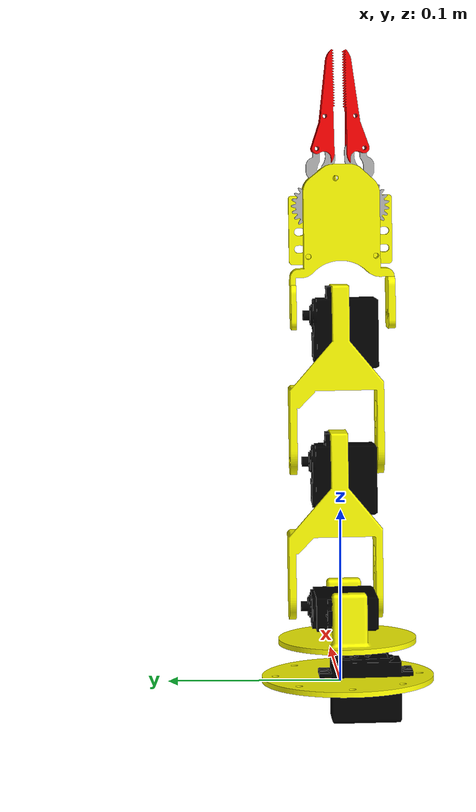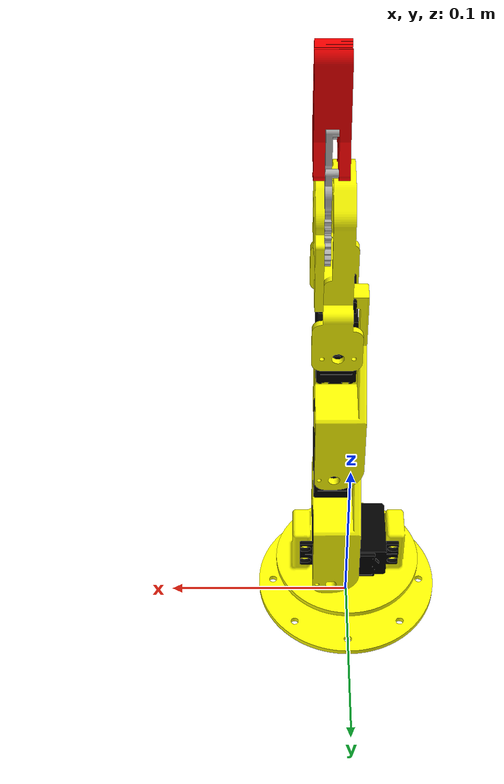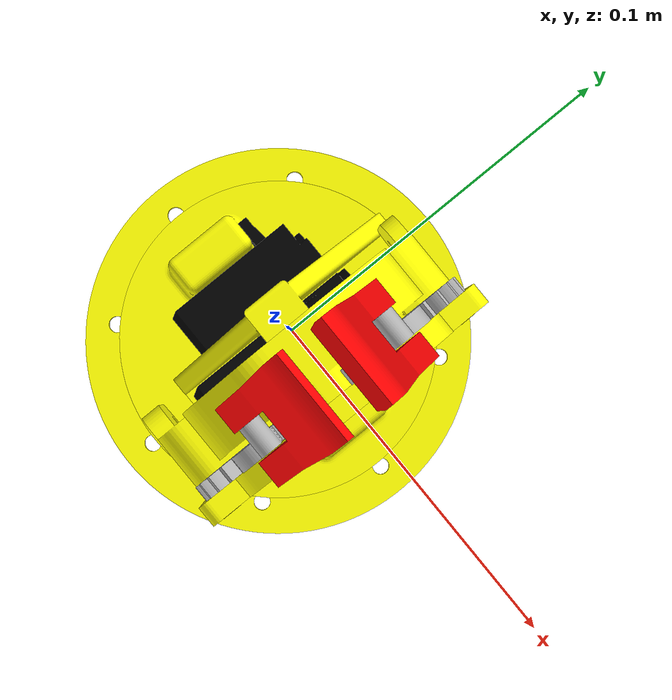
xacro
<?xml version="1.0" ?>
<robot name="manipulator" xmlns:xacro="http://www.ros.org/wiki/xacro">

<xacro:include filename="$(find manipulator_description)/urdf/materials.xacro" />
<xacro:include filename="$(find manipulator_description)/urdf/manipulator.trans" />
<xacro:include filename="$(find manipulator_description)/urdf/manipulator.gazebo" />
<link name="dummy">
</link>
<link name="base_link">
  <inertial>
    <origin rpy="0 0 0" xyz="-4.6483972681813947e-07 -0.0028785742867781672 0.0017214669795832275"/>
    <mass value="0.16048002164494451"/>
    <inertia ixx="0.000107" ixy="-0.0" ixz="0.0" iyy="0.000113" iyz="2e-06" izz="0.000219"/>
  </inertial>
  <visual>
    <origin rpy="0 0 0" xyz="0 0 0"/>
    <geometry>
      <mesh filename="package://manipulator_description/meshes/base_link.stl" scale="0.001 0.001 0.001"/>
    </geometry>
    <material name="yellow"/>
  </visual>
  <collision>
    <origin rpy="0 0 0" xyz="0 0 0"/>
    <geometry>
      <mesh filename="package://manipulator_description/meshes/base_link.stl" scale="0.001 0.001 0.001"/>
    </geometry>
  </collision>
</link>

<link name="S3003_v5_1">
  <inertial>
    <origin rpy="0 0 0" xyz="0.005025153953307029 -0.02455118048560477 -0.007694912196112059"/>
    <mass value="0.23401442553734322"/>
    <inertia ixx="6e-05" ixy="0.0" ixz="-0.0" iyy="3.5e-05" iyz="-1e-06" izz="4e-05"/>
  </inertial>
  <visual>
    <origin rpy="0 0 0" xyz="0.005025 -0.009822 -0.003022"/>
    <geometry>
      <mesh filename="package://manipulator_description/meshes/S3003_v5_1.stl" scale="0.001 0.001 0.001"/>
    </geometry>
    <material name="black"/>
  </visual>
  <collision>
    <origin rpy="0 0 0" xyz="0.005025 -0.009822 -0.003022"/>
    <geometry>
      <mesh filename="package://manipulator_description/meshes/S3003_v5_1.stl" scale="0.001 0.001 0.001"/>
    </geometry>
  </collision>
</link>

<link name="bottom_linkz_v4_1">
  <inertial>
    <origin rpy="0 0 0" xyz="1.8717896267049896e-05 0.00019172714869587684 0.010978273812522824"/>
    <mass value="0.19906890879785208"/>
    <inertia ixx="6.9e-05" ixy="0.0" ixz="-0.0" iyy="0.000123" iyz="0.0" izz="0.000154"/>
  </inertial>
  <visual>
    <origin rpy="0 0 0" xyz="-0.0 0.004022 -0.019432"/>
    <geometry>
      <mesh filename="package://manipulator_description/meshes/bottom_linkz_v4_1.stl" scale="0.001 0.001 0.001"/>
    </geometry>
    <material name="yellow"/>
  </visual>
  <collision>
    <origin rpy="0 0 0" xyz="-0.0 0.004022 -0.019432"/>
    <geometry>
      <mesh filename="package://manipulator_description/meshes/bottom_linkz_v4_1.stl" scale="0.001 0.001 0.001"/>
    </geometry>
  </collision>
</link>

<link name="S3003_v5_2">
  <inertial>
    <origin rpy="0 0 0" xyz="-0.024427603744651884 -0.007999833662449479 0.005151780138407669"/>
    <mass value="0.23401442553734322"/>
    <inertia ixx="3.5e-05" ixy="-1e-06" ixz="0.0" iyy="4e-05" iyz="0.0" izz="6e-05"/>
  </inertial>
  <visual>
    <origin rpy="0 0 0" xyz="-0.02425 -0.006257 -0.037088"/>
    <geometry>
      <mesh filename="package://manipulator_description/meshes/S3003_v5_2.stl" scale="0.001 0.001 0.001"/>
    </geometry>
    <material name="black"/>
  </visual>
  <collision>
    <origin rpy="0 0 0" xyz="-0.02425 -0.006257 -0.037088"/>
    <geometry>
      <mesh filename="package://manipulator_description/meshes/S3003_v5_2.stl" scale="0.001 0.001 0.001"/>
    </geometry>
  </collision>
</link>

<link name="link_v3_1">
  <inertial>
    <origin rpy="0 0 0" xyz="-0.004835375618104331 -0.019519639386637894 0.04074861857700073"/>
    <mass value="0.14389975561434148"/>
    <inertia ixx="0.000157" ixy="-1e-06" ixz="8e-06" iyy="0.000115" iyz="5e-06" izz="6e-05"/>
  </inertial>
  <visual>
    <origin rpy="0 0 0" xyz="-0.01015 -0.022524 -0.041858"/>
    <geometry>
      <mesh filename="package://manipulator_description/meshes/link_v3_1.stl" scale="0.001 0.001 0.001"/>
    </geometry>
    <material name="yellow"/>
  </visual>
  <collision>
    <origin rpy="0 0 0" xyz="-0.01015 -0.022524 -0.041858"/>
    <geometry>
      <mesh filename="package://manipulator_description/meshes/link_v3_1.stl" scale="0.001 0.001 0.001"/>
    </geometry>
  </collision>
</link>

<link name="S3003_v5_3">
  <inertial>
    <origin rpy="0 0 0" xyz="-0.005025153953305236 -0.008462353687474342 -0.02429777794975288"/>
    <mass value="0.23401442553734322"/>
    <inertia ixx="6e-05" ixy="0.0" ixz="-0.0" iyy="4e-05" iyz="-1e-06" izz="3.5e-05"/>
  </inertial>
  <visual>
    <origin rpy="0 0 0" xyz="-0.015334 -0.006085 -0.141379"/>
    <geometry>
      <mesh filename="package://manipulator_description/meshes/S3003_v5_3.stl" scale="0.001 0.001 0.001"/>
    </geometry>
    <material name="black"/>
  </visual>
  <collision>
    <origin rpy="0 0 0" xyz="-0.015334 -0.006085 -0.141379"/>
    <geometry>
      <mesh filename="package://manipulator_description/meshes/S3003_v5_3.stl" scale="0.001 0.001 0.001"/>
    </geometry>
  </collision>
</link>

<link name="link_v3_2">
  <inertial>
    <origin rpy="0 0 0" xyz="-0.004835375618104624 -0.01951993804742425 0.04074854407700937"/>
    <mass value="0.14389975561434148"/>
    <inertia ixx="0.000157" ixy="-1e-06" ixz="8e-06" iyy="0.000115" iyz="5e-06" izz="6e-05"/>
  </inertial>
  <visual>
    <origin rpy="0 0 0" xyz="-0.010309 -0.022052 -0.127026"/>
    <geometry>
      <mesh filename="package://manipulator_description/meshes/link_v3_2.stl" scale="0.001 0.001 0.001"/>
    </geometry>
    <material name="yellow"/>
  </visual>
  <collision>
    <origin rpy="0 0 0" xyz="-0.010309 -0.022052 -0.127026"/>
    <geometry>
      <mesh filename="package://manipulator_description/meshes/link_v3_2.stl" scale="0.001 0.001 0.001"/>
    </geometry>
  </collision>
</link>

<link name="S3003_v5_4">
  <inertial>
    <origin rpy="0 0 0" xyz="0.005024846046694466 -0.008462652348260708 -0.024297852449744334"/>
    <mass value="0.23401442553734322"/>
    <inertia ixx="6e-05" ixy="0.0" ixz="-0.0" iyy="4e-05" iyz="-1e-06" izz="3.5e-05"/>
  </inertial>
  <visual>
    <origin rpy="0 0 0" xyz="-0.005309 -0.005613 -0.226547"/>
    <geometry>
      <mesh filename="package://manipulator_description/meshes/S3003_v5_4.stl" scale="0.001 0.001 0.001"/>
    </geometry>
    <material name="black"/>
  </visual>
  <collision>
    <origin rpy="0 0 0" xyz="-0.005309 -0.005613 -0.226547"/>
    <geometry>
      <mesh filename="package://manipulator_description/meshes/S3003_v5_4.stl" scale="0.001 0.001 0.001"/>
    </geometry>
  </collision>
</link>

<link name="hand_front_v1_1">
  <inertial>
    <origin rpy="0 0 0" xyz="-0.0017012479204427944 -0.0234026790579894 0.04149636264877571"/>
    <mass value="0.15370051173121926"/>
    <inertia ixx="0.000156" ixy="0.0" ixz="6e-06" iyy="0.000103" iyz="-6e-06" izz="5.9e-05"/>
  </inertial>
  <visual>
    <origin rpy="0 0 0" xyz="-0.010334 -0.021579 -0.212194"/>
    <geometry>
      <mesh filename="package://manipulator_description/meshes/hand_front_v1_1.stl" scale="0.001 0.001 0.001"/>
    </geometry>
    <material name="yellow"/>
  </visual>
  <collision>
    <origin rpy="0 0 0" xyz="-0.010334 -0.021579 -0.212194"/>
    <geometry>
      <mesh filename="package://manipulator_description/meshes/hand_front_v1_1.stl" scale="0.001 0.001 0.001"/>
    </geometry>
  </collision>
</link>

<link name="hand_back_v1_1">
  <inertial>
    <origin rpy="0 0 0" xyz="0.011917643414654365 0.00018574754774295613 0.0005135403809225503"/>
    <mass value="0.07394116010800626"/>
    <inertia ixx="3.7e-05" ixy="0.0" ixz="0.0" iyy="1.6e-05" iyz="0.0" izz="2.1e-05"/>
  </inertial>
  <visual>
    <origin rpy="0 0 0" xyz="-0.007834 0.000499 -0.271048"/>
    <geometry>
      <mesh filename="package://manipulator_description/meshes/hand_back_v1_1.stl" scale="0.001 0.001 0.001"/>
    </geometry>
    <material name="yellow"/>
  </visual>
  <collision>
    <origin rpy="0 0 0" xyz="-0.007834 0.000499 -0.271048"/>
    <geometry>
      <mesh filename="package://manipulator_description/meshes/hand_back_v1_1.stl" scale="0.001 0.001 0.001"/>
    </geometry>
  </collision>
</link>

<link name="hand_right_branch_v2_1">
  <inertial>
    <origin rpy="0 0 0" xyz="-0.0015312410417892865 -0.00020144929009488152 0.004060979858671765"/>
    <mass value="0.015624087959943174"/>
    <inertia ixx="3e-06" ixy="0.0" ixz="0.0" iyy="2e-06" iyz="0.0" izz="1e-06"/>
  </inertial>
  <visual>
    <origin rpy="0 0 0" xyz="-0.017834 0.014227 -0.275765"/>
    <geometry>
      <mesh filename="package://manipulator_description/meshes/hand_right_branch_v2_1.stl" scale="0.001 0.001 0.001"/>
    </geometry>
    <material name="silver_default"/>
  </visual>
  <collision>
    <origin rpy="0 0 0" xyz="-0.017834 0.014227 -0.275765"/>
    <geometry>
      <mesh filename="package://manipulator_description/meshes/hand_right_branch_v2_1.stl" scale="0.001 0.001 0.001"/>
    </geometry>
  </collision>
</link>

<link name="hand_left_branch_v1_1">
  <inertial>
    <origin rpy="0 0 0" xyz="-0.0015316842723374462 0.0002957294165382533 0.00428497713137832"/>
    <mass value="0.015405522957269007"/>
    <inertia ixx="3e-06" ixy="-0.0" ixz="0.0" iyy="2e-06" iyz="-0.0" izz="1e-06"/>
  </inertial>
  <visual>
    <origin rpy="0 0 0" xyz="-0.017834 -0.01337 -0.275331"/>
    <geometry>
      <mesh filename="package://manipulator_description/meshes/hand_left_branch_v1_1.stl" scale="0.001 0.001 0.001"/>
    </geometry>
    <material name="silver_default"/>
  </visual>
  <collision>
    <origin rpy="0 0 0" xyz="-0.017834 -0.01337 -0.275331"/>
    <geometry>
      <mesh filename="package://manipulator_description/meshes/hand_left_branch_v1_1.stl" scale="0.001 0.001 0.001"/>
    </geometry>
  </collision>
</link>

<link name="hand_right_branch_child_v1_1">
  <inertial>
    <origin rpy="0 0 0" xyz="-0.0016214666372533007 0.0014970180465795138 0.016187723255358"/>
    <mass value="0.004018492615889964"/>
    <inertia ixx="0.0" ixy="-0.0" ixz="0.0" iyy="0.0" iyz="0.0" izz="0.0"/>
  </inertial>
  <visual>
    <origin rpy="0 0 0" xyz="-0.017834 0.008929 -0.294145"/>
    <geometry>
      <mesh filename="package://manipulator_description/meshes/hand_right_branch_child_v1_1.stl" scale="0.001 0.001 0.001"/>
    </geometry>
    <material name="silver_default"/>
  </visual>
  <collision>
    <origin rpy="0 0 0" xyz="-0.017834 0.008929 -0.294145"/>
    <geometry>
      <mesh filename="package://manipulator_description/meshes/hand_right_branch_child_v1_1.stl" scale="0.001 0.001 0.001"/>
    </geometry>
  </collision>
</link>

<link name="hand_left_branch_child_v1_1">
  <inertial>
    <origin rpy="0 0 0" xyz="-0.001621466637253429 -0.0009884469493522258 0.01622756793692587"/>
    <mass value="0.004018492615889962"/>
    <inertia ixx="0.0" ixy="0.0" ixz="0.0" iyy="0.0" iyz="-0.0" izz="0.0"/>
  </inertial>
  <visual>
    <origin rpy="0 0 0" xyz="-0.017834 -0.008653 -0.293868"/>
    <geometry>
      <mesh filename="package://manipulator_description/meshes/hand_left_branch_child_v1_1.stl" scale="0.001 0.001 0.001"/>
    </geometry>
    <material name="silver_default"/>
  </visual>
  <collision>
    <origin rpy="0 0 0" xyz="-0.017834 -0.008653 -0.293868"/>
    <geometry>
      <mesh filename="package://manipulator_description/meshes/hand_left_branch_child_v1_1.stl" scale="0.001 0.001 0.001"/>
    </geometry>
  </collision>
</link>

<link name="finger_v1_1">
  <inertial>
    <origin rpy="0 0 0" xyz="0.003000000000122951 0.006925935101656399 0.022748486025277737"/>
    <mass value="0.04016093181165222"/>
    <inertia ixx="1.1e-05" ixy="0.0" ixz="0.0" iyy="1.2e-05" iyz="-1e-06" izz="1e-06"/>
  </inertial>
  <visual>
    <origin rpy="0 0 0" xyz="-0.012034 0.013708 -0.30876"/>
    <geometry>
      <mesh filename="package://manipulator_description/meshes/finger_v1_1.stl" scale="0.001 0.001 0.001"/>
    </geometry>
    <material name="red"/>
  </visual>
  <collision>
    <origin rpy="0 0 0" xyz="-0.012034 0.013708 -0.30876"/>
    <geometry>
      <mesh filename="package://manipulator_description/meshes/finger_v1_1.stl" scale="0.001 0.001 0.001"/>
    </geometry>
  </collision>
</link>

<link name="finger_v1_2">
  <inertial>
    <origin rpy="0 0 0" xyz="0.002999999999877146 -0.005846538995424292 0.02304924601608882"/>
    <mass value="0.04016093181165222"/>
    <inertia ixx="1.1e-05" ixy="0.0" ixz="-0.0" iyy="1.2e-05" iyz="1e-06" izz="1e-06"/>
  </inertial>
  <visual>
    <origin rpy="0 0 0" xyz="-0.012034 -0.0136 -0.30833"/>
    <geometry>
      <mesh filename="package://manipulator_description/meshes/finger_v1_2.stl" scale="0.001 0.001 0.001"/>
    </geometry>
    <material name="red"/>
  </visual>
  <collision>
    <origin rpy="0 0 0" xyz="-0.012034 -0.0136 -0.30833"/>
    <geometry>
      <mesh filename="package://manipulator_description/meshes/finger_v1_2.stl" scale="0.001 0.001 0.001"/>
    </geometry>
  </collision>
</link>

<joint name="dummy_joint" type="fixed">
 <parent link="dummy"/>
 <child link="base_link"/>
</joint>

<joint name="Rigid1" type="fixed">
  <origin rpy="0 0 0" xyz="-0.005025 0.009822 0.003022"/>
  <parent link="base_link"/>
  <child link="S3003_v5_1"/>
</joint>

<joint name="Rev2" type="revolute">
  <origin rpy="0 0 0" xyz="0.005025 -0.013844 0.01641"/>
  <parent link="S3003_v5_1"/>
  <child link="bottom_linkz_v4_1"/>
  <axis xyz="-0.0 0.015707 0.999877"/>
  <limit effort="30" lower="-2.617" upper="2.617" velocity="1.571"/>

</joint>

<joint name="Rigid3" type="fixed">
  <origin rpy="0 0 0" xyz="0.02425 0.010279 0.017656"/>
  <parent link="bottom_linkz_v4_1"/>
  <child link="S3003_v5_2"/>
</joint>

<joint name="Rev4" type="revolute">
  <origin rpy="0 0 0" xyz="-0.0141 0.016267 0.00477"/>
  <parent link="S3003_v5_2"/>
  <child link="link_v3_1"/>
  <axis xyz="-0.0 0.999877 -0.015707"/>
  <limit effort="30" lower="-2.617" upper="2.617" velocity="1.571"/>
</joint>

<joint name="Rigid5" type="fixed">
  <origin rpy="0 0 0" xyz="0.005184 -0.016439 0.099521"/>
  <parent link="link_v3_1"/>
  <child link="S3003_v5_3"/>
</joint>

<joint name="Rev6" type="revolute">
  <origin rpy="0 0 0" xyz="-0.005025 0.015967 -0.014353"/>
  <parent link="S3003_v5_3"/>
  <child link="link_v3_2"/>
  <axis xyz="-0.0 0.999877 -0.015707"/>
  <limit effort="30" lower="-2.617" upper="2.617" velocity="1.571"/>
</joint>

<joint name="Rigid7" type="fixed">
  <origin rpy="0 0 0" xyz="-0.005 -0.016439 0.099521"/>
  <parent link="link_v3_2"/>
  <child link="S3003_v5_4"/>
</joint>

<joint name="Rev8" type="revolute">
  <origin rpy="0 0 0" xyz="0.005025 0.015966 -0.014353"/>
  <parent link="S3003_v5_4"/>
  <child link="hand_front_v1_1"/>
  <axis xyz="-0.0 0.999877 -0.015707"/>
  <limit effort="30" lower="-2.617" upper="2.617" velocity="1.571"/>
</joint>

<joint name="Rigid9" type="fixed">
  <origin rpy="0 0 0" xyz="-0.0025 -0.022078 0.058854"/>
  <parent link="hand_front_v1_1"/>
  <child link="hand_back_v1_1"/>
</joint>

<joint name="Rev10" type="revolute">
  <origin rpy="0 0 0" xyz="0.01 -0.013728 0.004717"/>
  <parent link="hand_back_v1_1"/>
  <child link="hand_right_branch_v2_1"/>
  <axis xyz="-1.0 -0.0 -0.0"/>
  <limit effort="30" lower="-2.617" upper="0" velocity="1.571"/>
</joint>

<joint name="Rev11" type="revolute">
  <origin rpy="0 0 0" xyz="0.01 0.013869 0.004283"/>
  <parent link="hand_back_v1_1"/>
  <child link="hand_left_branch_v1_1"/>
  <axis xyz="-1.0 -0.0 -0.0"/>
  <limit effort="30" lower="0" upper="2.617" velocity="1.571"/>
</joint>

<joint name="Rev12" type="revolute">
  <origin rpy="0 0 0" xyz="0.01 -0.00843 0.023097"/>
  <parent link="hand_back_v1_1"/>
  <child link="hand_right_branch_child_v1_1"/>
  <axis xyz="-1.0 -0.0 -0.0"/>
  <limit effort="30" lower="-2.617" upper="2.617" velocity="1.571"/>
</joint>

<joint name="Rev13" type="revolute">
  <origin rpy="0 0 0" xyz="0.01 0.009152 0.02282"/>
  <parent link="hand_back_v1_1"/>
  <child link="hand_left_branch_child_v1_1"/>
  <axis xyz="-1.0 -0.0 -0.0"/>
  <limit effort="30" lower="-2.617" upper="2.617" velocity="1.571"/>
</joint>

<joint name="Rev14" type="revolute">
  <origin rpy="0 0 0" xyz="-0.0058 0.000519 0.032995"/>
  <parent link="hand_right_branch_v2_1"/>
  <child link="finger_v1_1"/>
  <axis xyz="-1.0 -0.0 -0.0"/>
  <limit effort="30" lower="-2.617" upper="2.617" velocity="1.571"/>
</joint>

<joint name="Rev15" type="revolute">
  <origin rpy="0 0 0" xyz="-0.0058 0.00023 0.032999"/>
  <parent link="hand_left_branch_v1_1"/>
  <child link="finger_v1_2"/>
  <axis xyz="-1.0 0.0 -0.0"/>
  <limit effort="30" lower="-2.617" upper="2.617" velocity="1.571"/>
</joint>

</robot>

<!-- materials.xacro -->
<robot name="manipulator" xmlns:xacro="http://www.ros.org/wiki/xacro" >

<material name="red">
    <color rgba="1.0 0.0 0.0 1.0"/>
</material>

<material name="green">
    <color rgba="0.0 1.0 0.0 1.0"/>
</material>

<material name="blue">
    <color rgba="0.0 0.0 1.0 1.0"/>
</material>

<material name="yellow">
    <color rgba="1.0 1.0 0.0 1.0"/>
</material>

<material name="black">
    <color rgba="0.0 0.0 0.0 1.0"/>
</material>

<material name="white">
    <color rgba="1.0 1.0 1.0 1.0"/>
</material>

<material name="silver_default">
  <color rgba="0.700 0.700 0.700 1.000"/>
</material>

</robot>

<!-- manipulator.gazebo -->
<robot name="manipulator" xmlns:xacro="http://www.ros.org/wiki/xacro" >

<xacro:property name="body_color" value="Gazebo/Silver" />

<gazebo>
  <plugin filename="libgazebo_ros_control.so" name="control"/>
</gazebo>
<gazebo reference="base_link">
  <material>${body_color}</material>
  <mu1>0.2</mu1>
  <mu2>0.2</mu2>
  <selfCollide>true</selfCollide>
  <gravity>true</gravity>
</gazebo>

<gazebo reference="S3003_v5_1">
  <material>${body_color}</material>
  <mu1>0.2</mu1>
  <mu2>0.2</mu2>
  <selfCollide>true</selfCollide>
</gazebo>

<gazebo reference="bottom_linkz_v4_1">
  <material>${body_color}</material>
  <mu1>0.2</mu1>
  <mu2>0.2</mu2>
  <selfCollide>true</selfCollide>
</gazebo>

<gazebo reference="S3003_v5_2">
  <material>${body_color}</material>
  <mu1>0.2</mu1>
  <mu2>0.2</mu2>
  <selfCollide>true</selfCollide>
</gazebo>

<gazebo reference="link_v3_1">
  <material>${body_color}</material>
  <mu1>0.2</mu1>
  <mu2>0.2</mu2>
  <selfCollide>true</selfCollide>
</gazebo>

<gazebo reference="S3003_v5_3">
  <material>${body_color}</material>
  <mu1>0.2</mu1>
  <mu2>0.2</mu2>
  <selfCollide>true</selfCollide>
</gazebo>

<gazebo reference="link_v3_2">
  <material>${body_color}</material>
  <mu1>0.2</mu1>
  <mu2>0.2</mu2>
  <selfCollide>true</selfCollide>
</gazebo>

<gazebo reference="S3003_v5_4">
  <material>${body_color}</material>
  <mu1>0.2</mu1>
  <mu2>0.2</mu2>
  <selfCollide>true</selfCollide>
</gazebo>

<gazebo reference="hand_front_v1_1">
  <material>${body_color}</material>
  <mu1>0.2</mu1>
  <mu2>0.2</mu2>
  <selfCollide>true</selfCollide>
</gazebo>

<gazebo reference="hand_back_v1_1">
  <material>${body_color}</material>
  <mu1>0.2</mu1>
  <mu2>0.2</mu2>
  <selfCollide>true</selfCollide>
</gazebo>

<gazebo reference="hand_right_branch_v2_1">
  <material>${body_color}</material>
  <mu1>0.2</mu1>
  <mu2>0.2</mu2>
  <selfCollide>true</selfCollide>
</gazebo>

<gazebo reference="hand_left_branch_v1_1">
  <material>${body_color}</material>
  <mu1>0.2</mu1>
  <mu2>0.2</mu2>
  <selfCollide>true</selfCollide>
</gazebo>

<gazebo reference="hand_right_branch_child_v1_1">
  <material>${body_color}</material>
  <mu1>0.2</mu1>
  <mu2>0.2</mu2>
  <selfCollide>true</selfCollide>
</gazebo>

<gazebo reference="hand_left_branch_child_v1_1">
  <material>${body_color}</material>
  <mu1>0.2</mu1>
  <mu2>0.2</mu2>
  <selfCollide>true</selfCollide>
</gazebo>

<gazebo reference="finger_v1_1">
  <material>${body_color}</material>
  <mu1>0.2</mu1>
  <mu2>0.2</mu2>
  <selfCollide>true</selfCollide>
</gazebo>

<gazebo reference="finger_v1_2">
  <material>${body_color}</material>
  <mu1>0.2</mu1>
  <mu2>0.2</mu2>
  <selfCollide>true</selfCollide>
</gazebo>

</robot>
